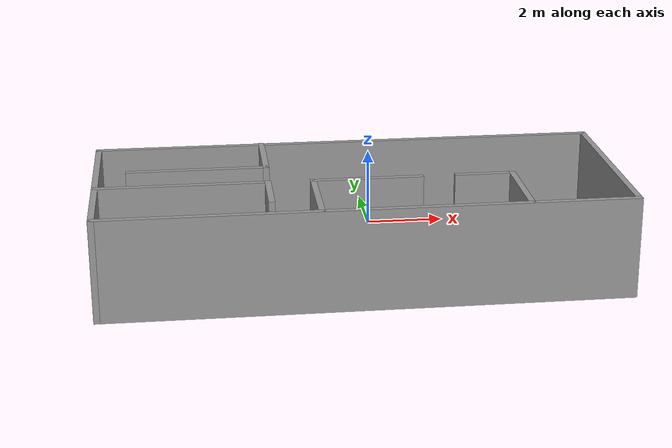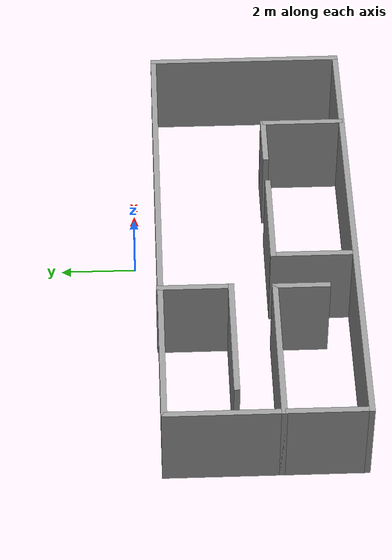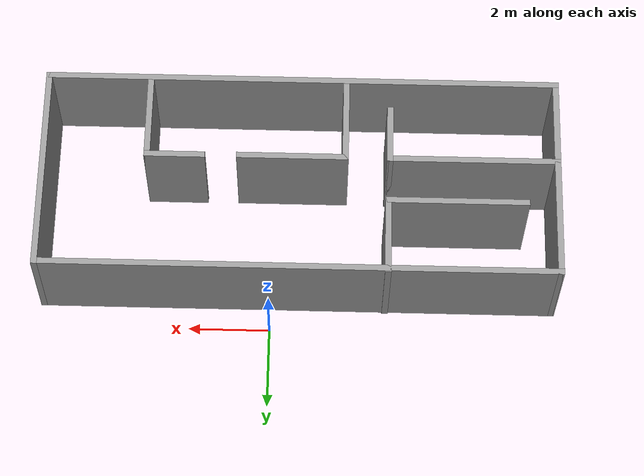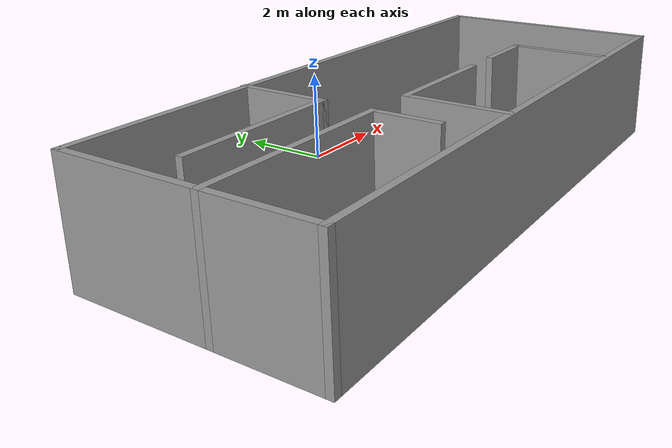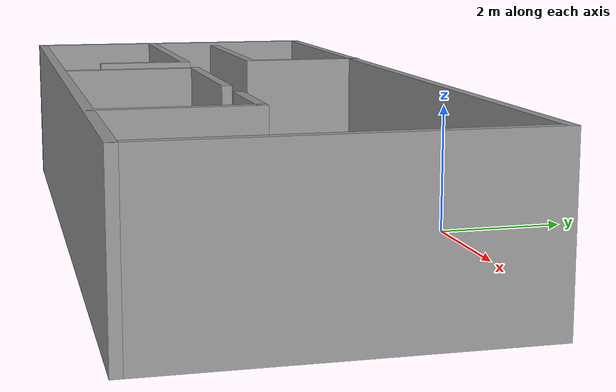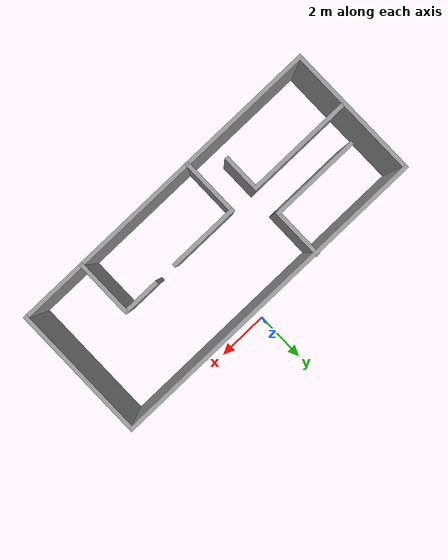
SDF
<?xml version='1.0'?>
<sdf version='1.7'>
  <model name='room'>
    <pose>-0.68 -2.9075 0 0 -0 0</pose>
    <link name='Wall_1'>
      <collision name='Wall_1_Collision'>
        <geometry>
          <box>
            <size>12.75 0.15 2.5</size>
          </box>
        </geometry>
        <pose>0 0 1.25 0 -0 0</pose>
      </collision>
      <visual name='Wall_1_Visual'>
        <pose>0 0 1.25 0 -0 0</pose>
        <geometry>
          <box>
            <size>12.75 0.15 2.5</size>
          </box>
        </geometry>
        <material>
          <script>
            <uri>file://media/materials/scripts/gazebo.material</uri>
            <name>Gazebo/Grey</name>
          </script>
          <ambient>1 1 1 1</ambient>
        </material>
        <meta>
          <layer>0</layer>
        </meta>
      </visual>
      <pose>0 2.2675 0 0 -0 0</pose>
    </link>
    <link name='Wall_10'>
      <collision name='Wall_10_Collision'>
        <geometry>
          <box>
            <size>1.5 0.15 2.5</size>
          </box>
        </geometry>
        <pose>0 0 1.25 0 -0 0</pose>
      </collision>
      <visual name='Wall_10_Visual'>
        <pose>0 0 1.25 0 -0 0</pose>
        <geometry>
          <box>
            <size>1.5 0.15 2.5</size>
          </box>
        </geometry>
        <material>
          <script>
            <uri>file://media/materials/scripts/gazebo.material</uri>
            <name>Gazebo/Grey</name>
          </script>
          <ambient>1 1 1 1</ambient>
        </material>
        <meta>
          <layer>0</layer>
        </meta>
      </visual>
      <pose>-2.2 -1.3575 0 0 -0 -1.5708</pose>
    </link>
    <link name='Wall_14'>
      <collision name='Wall_14_Collision'>
        <geometry>
          <box>
            <size>2.25 0.15 2.5</size>
          </box>
        </geometry>
        <pose>0 0 1.25 0 -0 0</pose>
      </collision>
      <visual name='Wall_14_Visual'>
        <pose>0 0 1.25 0 -0 0</pose>
        <geometry>
          <box>
            <size>2.25 0.15 2.5</size>
          </box>
        </geometry>
        <material>
          <script>
            <uri>file://media/materials/scripts/gazebo.material</uri>
            <name>Gazebo/Grey</name>
          </script>
          <ambient>1 1 1 1</ambient>
        </material>
        <meta>
          <layer>0</layer>
        </meta>
      </visual>
      <pose>-1.11 -1.7425 0 0 -0 1.5708</pose>
    </link>
    <link name='Wall_15'>
      <collision name='Wall_15_Collision'>
        <geometry>
          <box>
            <size>2.75 0.15 2.5</size>
          </box>
        </geometry>
        <pose>0 0 1.25 0 -0 0</pose>
      </collision>
      <visual name='Wall_15_Visual'>
        <pose>0 0 1.25 0 -0 0</pose>
        <geometry>
          <box>
            <size>2.75 0.15 2.5</size>
          </box>
        </geometry>
        <material>
          <script>
            <uri>file://media/materials/scripts/gazebo.material</uri>
            <name>Gazebo/Grey</name>
          </script>
          <ambient>1 1 1 1</ambient>
        </material>
        <meta>
          <layer>0</layer>
        </meta>
      </visual>
      <pose>0.19 -0.6925 0 0 -0 0</pose>
    </link>
    <link name='Wall_17'>
      <collision name='Wall_17_Collision'>
        <geometry>
          <box>
            <size>1.5 0.15 2.5</size>
          </box>
        </geometry>
        <pose>0 0 1.25 0 -0 0</pose>
      </collision>
      <visual name='Wall_17_Visual'>
        <pose>0 0 1.25 0 -0 0</pose>
        <geometry>
          <box>
            <size>1.5 0.15 2.5</size>
          </box>
        </geometry>
        <material>
          <script>
            <uri>file://media/materials/scripts/gazebo.material</uri>
            <name>Gazebo/Grey</name>
          </script>
          <ambient>1 1 1 1</ambient>
        </material>
        <meta>
          <layer>0</layer>
        </meta>
      </visual>
      <pose>3.085 -0.6825 0 0 -0 0</pose>
    </link>
    <link name='Wall_18'>
      <collision name='Wall_18_Collision'>
        <geometry>
          <box>
            <size>2.25 0.15 2.5</size>
          </box>
        </geometry>
        <pose>0 0 1.25 0 -0 0</pose>
      </collision>
      <visual name='Wall_18_Visual'>
        <pose>0 0 1.25 0 -0 0</pose>
        <geometry>
          <box>
            <size>2.25 0.15 2.5</size>
          </box>
        </geometry>
        <material>
          <script>
            <uri>file://media/materials/scripts/gazebo.material</uri>
            <name>Gazebo/Grey</name>
          </script>
          <ambient>1 1 1 1</ambient>
        </material>
        <meta>
          <layer>0</layer>
        </meta>
      </visual>
      <pose>3.76 -1.7325 0 0 -0 -1.5708</pose>
    </link>
    <link name='Wall_2'>
      <collision name='Wall_2_Collision'>
        <geometry>
          <box>
            <size>5.25 0.15 2.5</size>
          </box>
        </geometry>
        <pose>0 0 1.25 0 -0 0</pose>
      </collision>
      <visual name='Wall_2_Visual'>
        <pose>0 0 1.25 0 -0 0</pose>
        <geometry>
          <box>
            <size>5.25 0.15 2.5</size>
          </box>
        </geometry>
        <material>
          <script>
            <uri>file://media/materials/scripts/gazebo.material</uri>
            <name>Gazebo/Grey</name>
          </script>
          <ambient>1 1 1 1</ambient>
        </material>
        <meta>
          <layer>0</layer>
        </meta>
      </visual>
      <pose>6.3 -0.2825 0 0 -0 -1.5708</pose>
    </link>
    <link name='Wall_3'>
      <collision name='Wall_3_Collision'>
        <geometry>
          <box>
            <size>12.75 0.15 2.5</size>
          </box>
        </geometry>
        <pose>0 0 1.25 0 -0 0</pose>
      </collision>
      <visual name='Wall_3_Visual'>
        <pose>0 0 1.25 0 -0 0</pose>
        <geometry>
          <box>
            <size>12.75 0.15 2.5</size>
          </box>
        </geometry>
        <material>
          <script>
            <uri>file://media/materials/scripts/gazebo.material</uri>
            <name>Gazebo/Grey</name>
          </script>
          <ambient>1 1 1 1</ambient>
        </material>
        <meta>
          <layer>0</layer>
        </meta>
      </visual>
      <pose>0 -2.8325 0 0 -0 3.14159</pose>
    </link>
    <link name='Wall_4'>
      <collision name='Wall_4_Collision'>
        <geometry>
          <box>
            <size>5.25 0.15 2.5</size>
          </box>
        </geometry>
        <pose>0 0 1.25 0 -0 0</pose>
      </collision>
      <visual name='Wall_4_Visual'>
        <pose>0 0 1.25 0 -0 0</pose>
        <geometry>
          <box>
            <size>5.25 0.15 2.5</size>
          </box>
        </geometry>
        <material>
          <script>
            <uri>file://media/materials/scripts/gazebo.material</uri>
            <name>Gazebo/Grey</name>
          </script>
          <ambient>1 1 1 1</ambient>
        </material>
        <meta>
          <layer>0</layer>
        </meta>
      </visual>
      <pose>-6.3 -0.2825 0 0 -0 1.5708</pose>
    </link>
    <link name='Wall_6'>
      <collision name='Wall_6_Collision'>
        <geometry>
          <box>
            <size>3.5 0.15 2.5</size>
          </box>
        </geometry>
        <pose>0 0 1.25 0 -0 0</pose>
      </collision>
      <visual name='Wall_6_Visual'>
        <pose>0 0 1.25 0 -0 0</pose>
        <geometry>
          <box>
            <size>3.5 0.15 2.5</size>
          </box>
        </geometry>
        <material>
          <script>
            <uri>file://media/materials/scripts/gazebo.material</uri>
            <name>Gazebo/Grey</name>
          </script>
          <ambient>1 1 1 1</ambient>
        </material>
        <meta>
          <layer>0</layer>
        </meta>
      </visual>
      <pose>-3.845 0.4475 0 0 -0 0</pose>
    </link>
    <link name='Wall_7'>
      <collision name='Wall_7_Collision'>
        <geometry>
          <box>
            <size>2 0.15 2.5</size>
          </box>
        </geometry>
        <pose>0 0 1.25 0 -0 0</pose>
      </collision>
      <visual name='Wall_7_Visual'>
        <pose>0 0 1.25 0 -0 0</pose>
        <geometry>
          <box>
            <size>2 0.15 2.5</size>
          </box>
        </geometry>
        <material>
          <script>
            <uri>file://media/materials/scripts/gazebo.material</uri>
            <name>Gazebo/Grey</name>
          </script>
          <ambient>1 1 1 1</ambient>
        </material>
        <meta>
          <layer>0</layer>
        </meta>
      </visual>
      <pose>-2.17 1.3725 0 0 -0 1.5708</pose>
    </link>
    <link name='Wall_9'>
      <collision name='Wall_9_Collision'>
        <geometry>
          <box>
            <size>4.25 0.15 2.5</size>
          </box>
        </geometry>
        <pose>0 0 1.25 0 -0 0</pose>
      </collision>
      <visual name='Wall_9_Visual'>
        <pose>0 0 1.25 0 -0 0</pose>
        <geometry>
          <box>
            <size>4.25 0.15 2.5</size>
          </box>
        </geometry>
        <material>
          <script>
            <uri>file://media/materials/scripts/gazebo.material</uri>
            <name>Gazebo/Grey</name>
          </script>
          <ambient>1 1 1 1</ambient>
        </material>
        <meta>
          <layer>0</layer>
        </meta>
      </visual>
      <pose>-4.25 -0.6825 0 0 -0 0</pose>
    </link>
    <static>1</static>
  </model>
</sdf>
